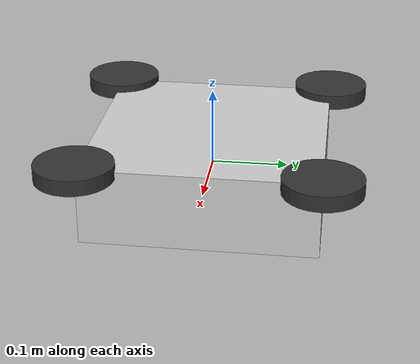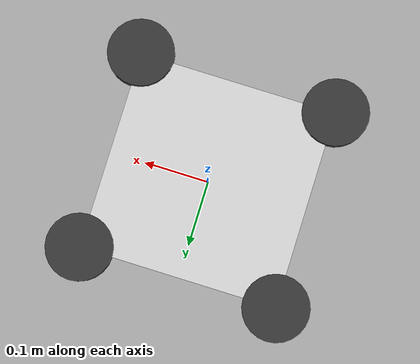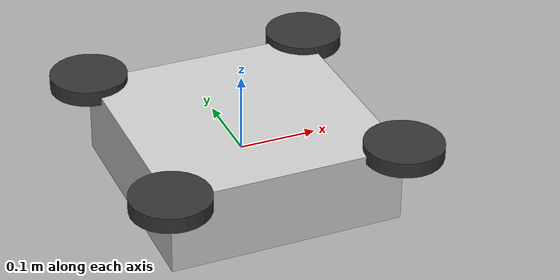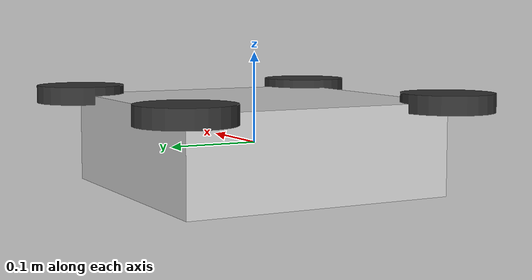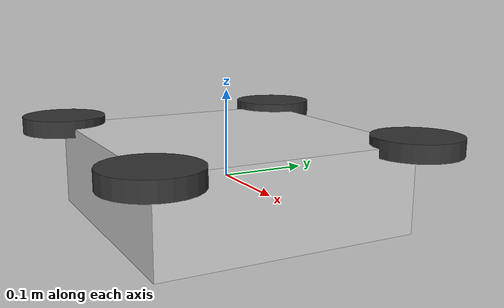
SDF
<?xml version="1.0" ?>
<sdf version="1.6">
  <model name="simple_drone">
    <link name="base_link">
      <!-- Main body -->
      <visual name="body_visual">
        <geometry>
          <box>
            <size>0.3 0.3 0.1</size>
          </box>
        </geometry>
        <material>
          <ambient>0.8 0.8 0.8 1</ambient>
          <diffuse>0.8 0.8 0.8 1</diffuse>
          <specular>0.2 0.2 0.2 1</specular>
        </material>
      </visual>

      <!-- Collision -->
      <collision name="body_collision">
        <geometry>
          <box>
            <size>0.3 0.3 0.1</size>
          </box>
        </geometry>
      </collision>

      <!-- Inertial properties -->
      <inertial>
        <mass>1.0</mass>
        <inertia>
          <ixx>0.01</ixx>
          <ixy>0</ixy>
          <ixz>0</ixz>
          <iyy>0.01</iyy>
          <iyz>0</iyz>
          <izz>0.02</izz>
        </inertia>
      </inertial>
    </link>

    <!-- Propellers -->
    <link name="propeller_1">
      <visual name="prop_1_visual">
        <geometry>
          <cylinder>
            <radius>0.05</radius>
            <length>0.02</length>
          </cylinder>
        </geometry>
        <material>
          <ambient>0.2 0.2 0.2 1</ambient>
          <diffuse>0.2 0.2 0.2 1</diffuse>
        </material>
      </visual>
      <pose>0.15 0.15 0.05 0 0 0</pose>
    </link>

    <link name="propeller_2">
      <visual name="prop_2_visual">
        <geometry>
          <cylinder>
            <radius>0.05</radius>
            <length>0.02</length>
          </cylinder>
        </geometry>
        <material>
          <ambient>0.2 0.2 0.2 1</ambient>
          <diffuse>0.2 0.2 0.2 1</diffuse>
        </material>
      </visual>
      <pose>-0.15 0.15 0.05 0 0 0</pose>
    </link>

    <link name="propeller_3">
      <visual name="prop_3_visual">
        <geometry>
          <cylinder>
            <radius>0.05</radius>
            <length>0.02</length>
          </cylinder>
        </geometry>
        <material>
          <ambient>0.2 0.2 0.2 1</ambient>
          <diffuse>0.2 0.2 0.2 1</diffuse>
        </material>
      </visual>
      <pose>0.15 -0.15 0.05 0 0 0</pose>
    </link>

    <link name="propeller_4">
      <visual name="prop_4_visual">
        <geometry>
          <cylinder>
            <radius>0.05</radius>
            <length>0.02</length>
          </cylinder>
        </geometry>
        <material>
          <ambient>0.2 0.2 0.2 1</ambient>
          <diffuse>0.2 0.2 0.2 1</diffuse>
        </material>
      </visual>
      <pose>-0.15 -0.15 0.05 0 0 0</pose>
    </link>

    <!-- Joints -->
    <joint name="prop_1_joint" type="fixed">
      <parent>base_link</parent>
      <child>propeller_1</child>
    </joint>

    <joint name="prop_2_joint" type="fixed">
      <parent>base_link</parent>
      <child>propeller_2</child>
    </joint>

    <joint name="prop_3_joint" type="fixed">
      <parent>base_link</parent>
      <child>propeller_3</child>
    </joint>

    <joint name="prop_4_joint" type="fixed">
      <parent>base_link</parent>
      <child>propeller_4</child>
    </joint>

    <!-- Plugin for drone control -->
    <plugin name="drone_controller" filename="libgazebo_ros_planar_move.so">
      <commandTopic>/cmd_vel</commandTopic>
      <odometryTopic>/odom</odometryTopic>
      <odometryFrame>odom</odometryFrame>
      <odometryRate>20.0</odometryRate>
      <robotBaseFrame>base_link</robotBaseFrame>
    </plugin>

    <!-- Static plugin to keep drone in air -->
    <plugin name="static_plugin" filename="libgazebo_ros_force.so">
      <bodyName>base_link</bodyName>
      <topicName>/thrust</topicName>
      <force>0 0 9.81</force>
    </plugin>
  </model>
</sdf>
